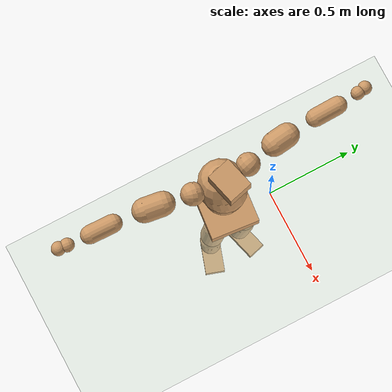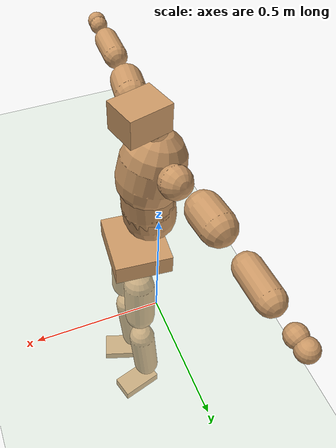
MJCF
<mujoco model="humanoid">
  <compiler coordinate="local" angle="radian"/>
  <default>
    <joint damping="0.0" armature="0.01" stiffness="0.0" limited="true"/>
    <geom conaffinity="1" condim="3" contype="7" margin="0.001" rgba="0.8 0.6 .4 1"/>
  </default>
  <asset>
    <texture type="skybox" builtin="gradient" rgb1=".4 .5 .6" rgb2="0 0 0" width="100" height="100"/>
    <texture builtin="flat" height="1278" mark="cross" markrgb="1 1 1" name="texgeom" random="0.01" rgb1="0.8 0.6 0.4" rgb2="0.8 0.6 0.4" type="cube" width="127"/>
    <texture builtin="checker" height="100" name="texplane" rgb1="0 0 0" rgb2="0.8 0.8 0.8" type="2d" width="100"/>
    <material name="MatPlane" reflectance="0.5" shininess="1" specular="1" texrepeat="60 60" texture="texplane"/>
    <material name="geom" texture="texgeom" texuniform="true"/>
  </asset>
  <worldbody>
    <light cutoff="100" diffuse="1 1 1" dir="-0 0 -1.3" directional="true" exponent="1" pos="0 0 1.3" specular=".1 .1 .1"/>
    <geom conaffinity="1" condim="3" name="floor" pos="0 0 0" rgba="0.8 0.9 0.8 1" size="100 100 .2" type="plane" material="MatPlane"/>
    <body name="Pelvis" pos="0 -0.2669 0.073">
      <freejoint name="Pelvis"/>
      <geom type="box" contype="1" conaffinity="1" density="5359.374893" pos="-0.0093 0.0009 -0.0068" size="0.1232 0.1423 0.0464" quat="0.9988 0.0000 0.0000 -0.0480" name="Pelvis"/>
      <body name="L_Hip" pos="0.0057 0.0703 -0.0886">
        <joint name="L_Hip_x" type="hinge" pos="0 0 0" axis="1 0 0" stiffness="1600" damping="160" armature="0.02" range="-180.0000 180.0000"/>
        <joint name="L_Hip_y" type="hinge" pos="0 0 0" axis="0 1 0" stiffness="1600" damping="160" armature="0.02" range="-180.0000 180.0000"/>
        <joint name="L_Hip_z" type="hinge" pos="0 0 0" axis="0 0 1" stiffness="1600" damping="160" armature="0.02" range="-180.0000 180.0000"/>
        <geom type="capsule" contype="1" conaffinity="1" density="2040.816327" size="0.0686" fromto="0.0018 0.0101 -0.0981 0.0055 0.0312 -0.3044" name="L_Hip"/>
        <body name="L_Knee" pos="0.0073 0.0413 -0.4024">
          <joint name="L_Knee_x" type="hinge" pos="0 0 0" axis="1 0 0" stiffness="1600" damping="160" armature="0.02" range="-180.0000 180.0000"/>
          <joint name="L_Knee_y" type="hinge" pos="0 0 0" axis="0 1 0" stiffness="1600" damping="160" armature="0.02" range="-180.0000 180.0000"/>
          <joint name="L_Knee_z" type="hinge" pos="0 0 0" axis="0 0 1" stiffness="1600" damping="160" armature="0.02" range="-180.0000 180.0000"/>
          <geom type="capsule" contype="1" conaffinity="1" density="1234.567901" size="0.0609" fromto="-0.0083 -0.0036 -0.0904 -0.0365 -0.0159 -0.3991" name="L_Knee"/>
          <body name="L_Ankle" pos="-0.0448 -0.0195 -0.4895">
            <joint name="L_Ankle_x" type="hinge" pos="0 0 0" axis="1 0 0" stiffness="1600" damping="160" armature="0.02" range="-180.0000 180.0000"/>
            <joint name="L_Ankle_y" type="hinge" pos="0 0 0" axis="0 1 0" stiffness="1600" damping="160" armature="0.02" range="-180.0000 180.0000"/>
            <joint name="L_Ankle_z" type="hinge" pos="0 0 0" axis="0 0 1" stiffness="1600" damping="160" armature="0.02" range="-180.0000 180.0000"/>
            <geom type="box" contype="1" conaffinity="1" density="999.999994" pos="0.0669 0.0183 -0.0327" size="0.0984 0.0528 0.0263" quat="0.9911 0.0000 0.0000 0.1331" name="L_Ankle"/>
            <body name="L_Toe" pos="0.1338 0.0366 -0.0653">
              <joint name="L_Toe_x" type="hinge" pos="0 0 0" axis="1 0 0" stiffness="1000" damping="100" armature="0.02" range="-180.0000 180.0000"/>
              <joint name="L_Toe_y" type="hinge" pos="0 0 0" axis="0 1 0" stiffness="1000" damping="100" armature="0.02" range="-180.0000 180.0000"/>
              <joint name="L_Toe_z" type="hinge" pos="0 0 0" axis="0 0 1" stiffness="1000" damping="100" armature="0.02" range="-180.0000 180.0000"/>
              <geom type="box" contype="1" conaffinity="1" density="9496448.624612" pos="0.0000 0.0000 0.0330" size="0.001 0.0026 0.0013" quat="0.9904 0.0000 0.0000 0.1380" name="L_Toe"/>
            </body>
          </body>
        </body>
      </body>
      <body name="R_Hip" pos="0.0119 -0.0707 -0.0988">
        <joint name="R_Hip_x" type="hinge" pos="0 0 0" axis="1 0 0" stiffness="1600" damping="160" armature="0.02" range="-180.0000 180.0000"/>
        <joint name="R_Hip_y" type="hinge" pos="0 0 0" axis="0 1 0" stiffness="1600" damping="160" armature="0.02" range="-180.0000 180.0000"/>
        <joint name="R_Hip_z" type="hinge" pos="0 0 0" axis="0 0 1" stiffness="1600" damping="160" armature="0.02" range="-180.0000 180.0000"/>
        <geom type="capsule" contype="1" conaffinity="1" density="2040.816327" size="0.0682" fromto="-0.0012 -0.0106 -0.0976 -0.0039 -0.0342 -0.3143" name="R_Hip"/>
        <body name="R_Knee" pos="-0.0051 -0.0448 -0.4119">
          <joint name="R_Knee_x" type="hinge" pos="0 0 0" axis="1 0 0" stiffness="1600" damping="160" armature="0.02" range="-180.0000 180.0000"/>
          <joint name="R_Knee_y" type="hinge" pos="0 0 0" axis="0 1 0" stiffness="1600" damping="160" armature="0.02" range="-180.0000 180.0000"/>
          <joint name="R_Knee_z" type="hinge" pos="0 0 0" axis="0 0 1" stiffness="1600" damping="160" armature="0.02" range="-180.0000 180.0000"/>
          <geom type="capsule" contype="1" conaffinity="1" density="1234.567901" size="0.0603" fromto="-0.0073 0.0040 -0.0899 -0.0320 0.0177 -0.3957" name="R_Knee"/>
          <body name="R_Ankle" pos="-0.0393 0.0217 -0.4855">
            <joint name="R_Ankle_x" type="hinge" pos="0 0 0" axis="1 0 0" stiffness="1600" damping="160" armature="0.02" range="-180.0000 180.0000"/>
            <joint name="R_Ankle_y" type="hinge" pos="0 0 0" axis="0 1 0" stiffness="1600" damping="160" armature="0.02" range="-180.0000 180.0000"/>
            <joint name="R_Ankle_z" type="hinge" pos="0 0 0" axis="0 0 1" stiffness="1600" damping="160" armature="0.02" range="-180.0000 180.0000"/>
            <geom type="box" contype="1" conaffinity="1" density="1000.000006" pos="0.0687 -0.0225 -0.0353" size="0.0955 0.0582 0.0241" quat="0.9875 0.0000 0.0000 -0.1578" name="R_Ankle"/>
            <body name="R_Toe" pos="0.1374 -0.0451 -0.0705">
              <joint name="R_Toe_x" type="hinge" pos="0 0 0" axis="1 0 0" stiffness="1000" damping="100" armature="0.02" range="-180.0000 180.0000"/>
              <joint name="R_Toe_y" type="hinge" pos="0 0 0" axis="0 1 0" stiffness="1000" damping="100" armature="0.02" range="-180.0000 180.0000"/>
              <joint name="R_Toe_z" type="hinge" pos="0 0 0" axis="0 0 1" stiffness="1000" damping="100" armature="0.02" range="-180.0000 180.0000"/>
              <geom type="box" contype="1" conaffinity="1" density="8493709.821259" pos="0.0000 0.0000 0.0368" size="0.0013 0.0027 0.0013" quat="0.9888 0.0000 0.0000 -0.1493" name="R_Toe"/>
            </body>
          </body>
        </body>
      </body>
      <body name="Torso" pos="-0.0733 0.0058 0.1465">
        <joint name="Torso_x" type="hinge" pos="0 0 0" axis="1 0 0" stiffness="2000" damping="200" armature="0.02" range="-180.0000 180.0000"/>
        <joint name="Torso_y" type="hinge" pos="0 0 0" axis="0 1 0" stiffness="2000" damping="200" armature="0.02" range="-180.0000 180.0000"/>
        <joint name="Torso_z" type="hinge" pos="0 0 0" axis="0 0 1" stiffness="2000" damping="200" armature="0.02" range="-180.0000 180.0000"/>
        <geom type="capsule" contype="1" conaffinity="1" density="2040.816327" size="0.1115" fromto="0.0139 0.0040 0.1106 0.0036 0.0010 0.0286" name="Torso"/>
        <body name="Spine" pos="0.0175 0.005 0.1391">
          <joint name="Spine_x" type="hinge" pos="0 0 0" axis="1 0 0" stiffness="2000" damping="200" armature="0.02" range="-180.0000 180.0000"/>
          <joint name="Spine_y" type="hinge" pos="0 0 0" axis="0 1 0" stiffness="2000" damping="200" armature="0.02" range="-180.0000 180.0000"/>
          <joint name="Spine_z" type="hinge" pos="0 0 0" axis="0 0 1" stiffness="2000" damping="200" armature="0.02" range="-180.0000 180.0000"/>
          <geom type="capsule" contype="1" conaffinity="1" density="2040.816327" size="0.1079" fromto="0.0049 -0.0077 0.1076 -0.0024 0.0037 -0.0515" name="Spine"/>
          <body name="Chest" pos="0.0026 -0.004 0.0561">
            <joint name="Chest_x" type="hinge" pos="0 0 0" axis="1 0 0" stiffness="2000" damping="200" armature="0.02" range="-180.0000 180.0000"/>
            <joint name="Chest_y" type="hinge" pos="0 0 0" axis="0 1 0" stiffness="2000" damping="200" armature="0.02" range="-180.0000 180.0000"/>
            <joint name="Chest_z" type="hinge" pos="0 0 0" axis="0 0 1" stiffness="2000" damping="200" armature="0.02" range="-180.0000 180.0000"/>
            <geom type="capsule" contype="1" conaffinity="1" density="2040.816327" size="0.1328" fromto="-0.0314 -0.0061 0.1289 -0.0101 -0.0020 0.0416" name="Chest"/>
            <body name="Neck" pos="-0.06 -0.0114 0.2446">
              <joint name="Neck_x" type="hinge" pos="0 0 0" axis="1 0 0" stiffness="1000" damping="100" armature="0.02" range="-180.0000 180.0000"/>
              <joint name="Neck_y" type="hinge" pos="0 0 0" axis="0 1 0" stiffness="1000" damping="100" armature="0.02" range="-180.0000 180.0000"/>
              <joint name="Neck_z" type="hinge" pos="0 0 0" axis="0 0 1" stiffness="1000" damping="100" armature="0.02" range="-180.0000 180.0000"/>
              <geom type="capsule" contype="1" conaffinity="1" density="1000" size="0.0534" fromto="0.0318 0.0074 0.0422 0.0264 0.0061 0.0350" name="Neck"/>
              <body name="Head" pos="0.0582 0.0135 0.0772">
                <joint name="Head_x" type="hinge" pos="0 0 0" axis="1 0 0" stiffness="1000" damping="100" armature="0.02" range="-180.0000 180.0000"/>
                <joint name="Head_y" type="hinge" pos="0 0 0" axis="0 1 0" stiffness="1000" damping="100" armature="0.02" range="-180.0000 180.0000"/>
                <joint name="Head_z" type="hinge" pos="0 0 0" axis="0 0 1" stiffness="1000" damping="100" armature="0.02" range="-180.0000 180.0000"/>
                <geom type="box" contype="1" conaffinity="1" density="2249.999979" pos="0.0301 0.0078 0.0396" size="0.0893 0.0718 0.06" quat="0.9920 0.0000 0.0000 0.1259" name="Head"/>
              </body>
            </body>
            <body name="L_Thorax" pos="-0.0306 0.0914 0.1345">
              <joint name="L_Thorax_x" type="hinge" pos="0 0 0" axis="1 0 0" stiffness="1000" damping="100" armature="0.02" range="-180.0000 180.0000"/>
              <joint name="L_Thorax_y" type="hinge" pos="0 0 0" axis="0 1 0" stiffness="1000" damping="100" armature="0.02" range="-180.0000 180.0000"/>
              <joint name="L_Thorax_z" type="hinge" pos="0 0 0" axis="0 0 1" stiffness="1000" damping="100" armature="0.02" range="-180.0000 180.0000"/>
              <geom type="capsule" contype="1" conaffinity="1" density="1000" size="0.0666" fromto="-0.0166 0.0735 0.0250 -0.0170 0.0753 0.0256" name="L_Thorax"/>
              <body name="L_Shoulder" pos="-0.0336 0.1488 0.0505">
                <joint name="L_Shoulder_x" type="hinge" pos="0 0 0" axis="1 0 0" stiffness="1000" damping="100" armature="0.02" range="-720.0000 720.0000"/>
                <joint name="L_Shoulder_y" type="hinge" pos="0 0 0" axis="0 1 0" stiffness="1000" damping="100" armature="0.02" range="-720.0000 720.0000"/>
                <joint name="L_Shoulder_z" type="hinge" pos="0 0 0" axis="0 0 1" stiffness="1000" damping="100" armature="0.02" range="-720.0000 720.0000"/>
                <geom type="capsule" contype="1" conaffinity="1" density="1000" size="0.0686" fromto="-0.0129 0.0976 -0.0047 -0.0245 0.1847 -0.0090" name="L_Shoulder"/>
                <body name="L_Elbow" pos="-0.0374 0.2823 -0.0137">
                  <joint name="L_Elbow_x" type="hinge" pos="0 0 0" axis="1 0 0" stiffness="1000" damping="100" armature="0.02" range="-720.0000 720.0000"/>
                  <joint name="L_Elbow_y" type="hinge" pos="0 0 0" axis="0 1 0" stiffness="1000" damping="100" armature="0.02" range="-720.0000 720.0000"/>
                  <joint name="L_Elbow_z" type="hinge" pos="0 0 0" axis="0 0 1" stiffness="1000" damping="100" armature="0.02" range="-720.0000 720.0000"/>
                  <geom type="capsule" contype="1" conaffinity="1" density="1000" size="0.0515" fromto="-0.0011 0.0813 0.0054 -0.0030 0.2209 0.0145" name="L_Elbow"/>
                  <body name="L_Wrist" pos="-0.0041 0.3022 0.0199">
                    <joint name="L_Wrist_x" type="hinge" pos="0 0 0" axis="1 0 0" stiffness="600" damping="60" armature="0.02" range="-180.0000 180.0000"/>
                    <joint name="L_Wrist_y" type="hinge" pos="0 0 0" axis="0 1 0" stiffness="600" damping="60" armature="0.02" range="-180.0000 180.0000"/>
                    <joint name="L_Wrist_z" type="hinge" pos="0 0 0" axis="0 0 1" stiffness="600" damping="60" armature="0.02" range="-180.0000 180.0000"/>
                    <geom type="capsule" contype="1" conaffinity="1" density="1000" size="0.0381" fromto="-0.0081 0.0464 -0.0056 -0.0085 0.0484 -0.0058" name="L_Wrist"/>
                    <body name="L_Hand" pos="-0.0166 0.0948 -0.0114">
                      <joint name="L_Hand_x" type="hinge" pos="0 0 0" axis="1 0 0" stiffness="600" damping="60" armature="0.02" range="-180.0000 180.0000"/>
                      <joint name="L_Hand_y" type="hinge" pos="0 0 0" axis="0 1 0" stiffness="600" damping="60" armature="0.02" range="-180.0000 180.0000"/>
                      <joint name="L_Hand_z" type="hinge" pos="0 0 0" axis="0 0 1" stiffness="600" damping="60" armature="0.02" range="-180.0000 180.0000"/>
                      <geom type="sphere" contype="1" conaffinity="1" density="1000" size="0.0391" pos="0.0000 0.0000 0.0000" name="L_Hand"/>
                    </body>
                  </body>
                </body>
              </body>
            </body>
            <body name="R_Thorax" pos="-0.0338 -0.1044 0.1325">
              <joint name="R_Thorax_x" type="hinge" pos="0 0 0" axis="1 0 0" stiffness="1000" damping="100" armature="0.02" range="-180.0000 180.0000"/>
              <joint name="R_Thorax_y" type="hinge" pos="0 0 0" axis="0 1 0" stiffness="1000" damping="100" armature="0.02" range="-180.0000 180.0000"/>
              <joint name="R_Thorax_z" type="hinge" pos="0 0 0" axis="0 0 1" stiffness="1000" damping="100" armature="0.02" range="-180.0000 180.0000"/>
              <geom type="capsule" contype="1" conaffinity="1" density="1000" size="0.0662" fromto="-0.0097 -0.0684 0.0265 -0.0100 -0.0703 0.0272" name="R_Thorax"/>
              <body name="R_Shoulder" pos="-0.0198 -0.1387 0.0537">
                <joint name="R_Shoulder_x" type="hinge" pos="0 0 0" axis="1 0 0" stiffness="1000" damping="100" armature="0.02" range="-720.0000 720.0000"/>
                <joint name="R_Shoulder_y" type="hinge" pos="0 0 0" axis="0 1 0" stiffness="1000" damping="100" armature="0.02" range="-720.0000 720.0000"/>
                <joint name="R_Shoulder_z" type="hinge" pos="0 0 0" axis="0 0 1" stiffness="1000" damping="100" armature="0.02" range="-720.0000 720.0000"/>
                <geom type="capsule" contype="1" conaffinity="1" density="1000" size="0.0692" fromto="-0.0137 -0.0982 -0.0022 -0.0283 -0.2028 -0.0044" name="R_Shoulder"/>
                <body name="R_Elbow" pos="-0.042 -0.301 -0.0066">
                  <joint name="R_Elbow_x" type="hinge" pos="0 0 0" axis="1 0 0" stiffness="1000" damping="100" armature="0.02" range="-720.0000 720.0000"/>
                  <joint name="R_Elbow_y" type="hinge" pos="0 0 0" axis="0 1 0" stiffness="1000" damping="100" armature="0.02" range="-720.0000 720.0000"/>
                  <joint name="R_Elbow_z" type="hinge" pos="0 0 0" axis="0 0 1" stiffness="1000" damping="100" armature="0.02" range="-720.0000 720.0000"/>
                  <geom type="capsule" contype="1" conaffinity="1" density="1000" size="0.0521" fromto="-0.0017 -0.0820 0.0024 -0.0046 -0.2198 0.0064" name="R_Elbow"/>
                  <body name="R_Wrist" pos="-0.0063 -0.3018 0.0088">
                    <joint name="R_Wrist_x" type="hinge" pos="0 0 0" axis="1 0 0" stiffness="600" damping="60" armature="0.02" range="-180.0000 180.0000"/>
                    <joint name="R_Wrist_y" type="hinge" pos="0 0 0" axis="0 1 0" stiffness="600" damping="60" armature="0.02" range="-180.0000 180.0000"/>
                    <joint name="R_Wrist_z" type="hinge" pos="0 0 0" axis="0 0 1" stiffness="600" damping="60" armature="0.02" range="-180.0000 180.0000"/>
                    <geom type="capsule" contype="1" conaffinity="1" density="1000" size="0.0397" fromto="-0.0054 -0.0488 -0.0049 -0.0056 -0.0508 -0.0051" name="R_Wrist"/>
                    <body name="R_Hand" pos="-0.011 -0.0995 -0.0099">
                      <joint name="R_Hand_x" type="hinge" pos="0 0 0" axis="1 0 0" stiffness="600" damping="60" armature="0.02" range="-180.0000 180.0000"/>
                      <joint name="R_Hand_y" type="hinge" pos="0 0 0" axis="0 1 0" stiffness="600" damping="60" armature="0.02" range="-180.0000 180.0000"/>
                      <joint name="R_Hand_z" type="hinge" pos="0 0 0" axis="0 0 1" stiffness="600" damping="60" armature="0.02" range="-180.0000 180.0000"/>
                      <geom type="sphere" contype="1" conaffinity="1" density="1000" size="0.0406" pos="0.0000 0.0000 0.0000" name="R_Hand"/>
                    </body>
                  </body>
                </body>
              </body>
            </body>
          </body>
        </body>
      </body>
    </body>
  </worldbody>
  <actuator>
    <motor name="L_Hip_x" joint="L_Hip_x" gear="500"/>
    <motor name="L_Hip_y" joint="L_Hip_y" gear="500"/>
    <motor name="L_Hip_z" joint="L_Hip_z" gear="500"/>
    <motor name="L_Knee_x" joint="L_Knee_x" gear="500"/>
    <motor name="L_Knee_y" joint="L_Knee_y" gear="500"/>
    <motor name="L_Knee_z" joint="L_Knee_z" gear="500"/>
    <motor name="L_Ankle_x" joint="L_Ankle_x" gear="500"/>
    <motor name="L_Ankle_y" joint="L_Ankle_y" gear="500"/>
    <motor name="L_Ankle_z" joint="L_Ankle_z" gear="500"/>
    <motor name="L_Toe_x" joint="L_Toe_x" gear="500"/>
    <motor name="L_Toe_y" joint="L_Toe_y" gear="500"/>
    <motor name="L_Toe_z" joint="L_Toe_z" gear="500"/>
    <motor name="R_Hip_x" joint="R_Hip_x" gear="500"/>
    <motor name="R_Hip_y" joint="R_Hip_y" gear="500"/>
    <motor name="R_Hip_z" joint="R_Hip_z" gear="500"/>
    <motor name="R_Knee_x" joint="R_Knee_x" gear="500"/>
    <motor name="R_Knee_y" joint="R_Knee_y" gear="500"/>
    <motor name="R_Knee_z" joint="R_Knee_z" gear="500"/>
    <motor name="R_Ankle_x" joint="R_Ankle_x" gear="500"/>
    <motor name="R_Ankle_y" joint="R_Ankle_y" gear="500"/>
    <motor name="R_Ankle_z" joint="R_Ankle_z" gear="500"/>
    <motor name="R_Toe_x" joint="R_Toe_x" gear="500"/>
    <motor name="R_Toe_y" joint="R_Toe_y" gear="500"/>
    <motor name="R_Toe_z" joint="R_Toe_z" gear="500"/>
    <motor name="Torso_x" joint="Torso_x" gear="500"/>
    <motor name="Torso_y" joint="Torso_y" gear="500"/>
    <motor name="Torso_z" joint="Torso_z" gear="500"/>
    <motor name="Spine_x" joint="Spine_x" gear="500"/>
    <motor name="Spine_y" joint="Spine_y" gear="500"/>
    <motor name="Spine_z" joint="Spine_z" gear="500"/>
    <motor name="Chest_x" joint="Chest_x" gear="500"/>
    <motor name="Chest_y" joint="Chest_y" gear="500"/>
    <motor name="Chest_z" joint="Chest_z" gear="500"/>
    <motor name="Neck_x" joint="Neck_x" gear="500"/>
    <motor name="Neck_y" joint="Neck_y" gear="500"/>
    <motor name="Neck_z" joint="Neck_z" gear="500"/>
    <motor name="Head_x" joint="Head_x" gear="500"/>
    <motor name="Head_y" joint="Head_y" gear="500"/>
    <motor name="Head_z" joint="Head_z" gear="500"/>
    <motor name="L_Thorax_x" joint="L_Thorax_x" gear="500"/>
    <motor name="L_Thorax_y" joint="L_Thorax_y" gear="500"/>
    <motor name="L_Thorax_z" joint="L_Thorax_z" gear="500"/>
    <motor name="L_Shoulder_x" joint="L_Shoulder_x" gear="500"/>
    <motor name="L_Shoulder_y" joint="L_Shoulder_y" gear="500"/>
    <motor name="L_Shoulder_z" joint="L_Shoulder_z" gear="500"/>
    <motor name="L_Elbow_x" joint="L_Elbow_x" gear="500"/>
    <motor name="L_Elbow_y" joint="L_Elbow_y" gear="500"/>
    <motor name="L_Elbow_z" joint="L_Elbow_z" gear="500"/>
    <motor name="L_Wrist_x" joint="L_Wrist_x" gear="500"/>
    <motor name="L_Wrist_y" joint="L_Wrist_y" gear="500"/>
    <motor name="L_Wrist_z" joint="L_Wrist_z" gear="500"/>
    <motor name="L_Hand_x" joint="L_Hand_x" gear="500"/>
    <motor name="L_Hand_y" joint="L_Hand_y" gear="500"/>
    <motor name="L_Hand_z" joint="L_Hand_z" gear="500"/>
    <motor name="R_Thorax_x" joint="R_Thorax_x" gear="500"/>
    <motor name="R_Thorax_y" joint="R_Thorax_y" gear="500"/>
    <motor name="R_Thorax_z" joint="R_Thorax_z" gear="500"/>
    <motor name="R_Shoulder_x" joint="R_Shoulder_x" gear="500"/>
    <motor name="R_Shoulder_y" joint="R_Shoulder_y" gear="500"/>
    <motor name="R_Shoulder_z" joint="R_Shoulder_z" gear="500"/>
    <motor name="R_Elbow_x" joint="R_Elbow_x" gear="500"/>
    <motor name="R_Elbow_y" joint="R_Elbow_y" gear="500"/>
    <motor name="R_Elbow_z" joint="R_Elbow_z" gear="500"/>
    <motor name="R_Wrist_x" joint="R_Wrist_x" gear="500"/>
    <motor name="R_Wrist_y" joint="R_Wrist_y" gear="500"/>
    <motor name="R_Wrist_z" joint="R_Wrist_z" gear="500"/>
    <motor name="R_Hand_x" joint="R_Hand_x" gear="500"/>
    <motor name="R_Hand_y" joint="R_Hand_y" gear="500"/>
    <motor name="R_Hand_z" joint="R_Hand_z" gear="500"/>
  </actuator>
  <contact>
    <exclude body1="Torso" body2="Chest"/>
    <exclude body1="Head" body2="Chest"/>
    <exclude body1="R_Knee" body2="R_Toe"/>
    <exclude body1="R_Knee" body2="L_Ankle"/>
    <exclude body1="R_Knee" body2="L_Toe"/>
    <exclude body1="L_Knee" body2="L_Toe"/>
    <exclude body1="L_Knee" body2="R_Ankle"/>
    <exclude body1="L_Knee" body2="R_Toe"/>
    <exclude body1="L_Shoulder" body2="Chest"/>
    <exclude body1="R_Shoulder" body2="Chest"/>
  </contact>
  <sensor/>
  <size njmax="700" nconmax="700"/>
</mujoco>
